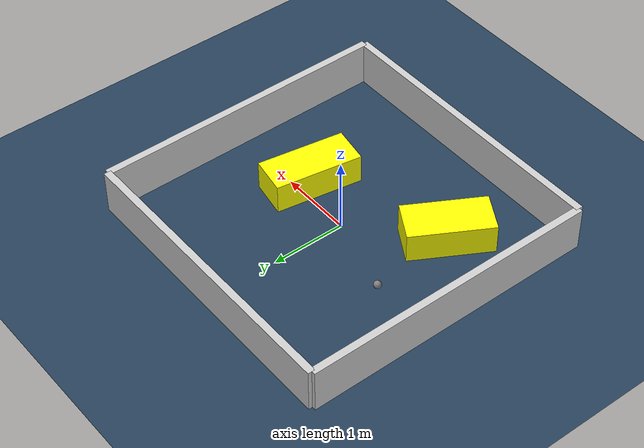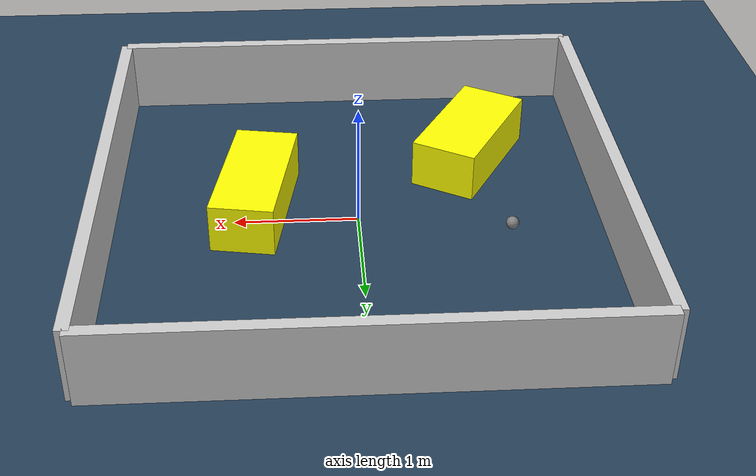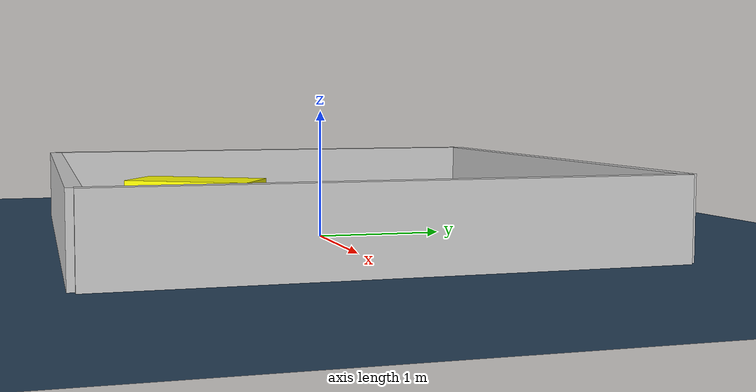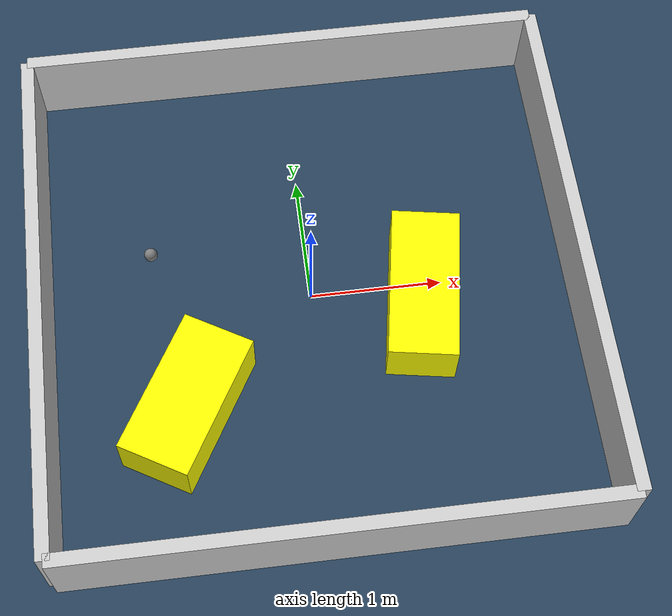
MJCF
<?xml version="1.0" ?>
<mujoco model="generated_environment">
  <option timestep="0.01" integrator="RK4" cone="elliptic"/>
  <default>
    <geom density="1"/>
  </default>
  <asset>
    <texture builtin="gradient" height="3072" rgb1="0.3 0.5 0.7" rgb2="0 0 0" type="skybox" width="512"/>
    <texture builtin="checker" height="300" mark="edge" markrgb="0.8 0.8 0.8" name="groundplane" rgb1="0.2 0.3 0.4" rgb2="0.1 0.2 0.3" type="2d" width="300"/>
    <material name="groundplane" reflectance="0.2" texrepeat="5 5" texture="groundplane" texuniform="true"/>
    <material name="robot" rgba="0.0 1.0 0.0 1"/>
  </asset>
  <worldbody>
    <light dir="0 0 -1" directional="true" pos="0 0 1.5"/>
    <geom condim="4" friction="1.0 0.005 0.001" material="groundplane" name="floor" size="0 0 0.05" type="plane"/>
    <body name="walls">
      <geom name="wall_1" condim="4" pos="-2.0 0.0 0.3" rgba="0.800000011920929 0.800000011920929 0.800000011920929 1.0" size="0.05 2.0 0.3" type="box"/>
      <geom name="wall_2" condim="4" pos="2.0 0.0 0.3" rgba="0.800000011920929 0.800000011920929 0.800000011920929 1.0" size="0.05 2.0 0.3" type="box"/>
      <geom name="wall_3" condim="4" pos="0.0 -2.0 0.3" rgba="0.800000011920929 0.800000011920929 0.800000011920929 1.0" size="2.0 0.05 0.3" type="box"/>
      <geom name="wall_4" condim="4" pos="0.0 2.0 0.3" rgba="0.800000011920929 0.800000011920929 0.800000011920929 1.0" size="2.0 0.05 0.3" type="box"/>
    </body>
    <body name="robot">
      <joint name="joint_x" type="slide" pos="0 0 0" axis="1 0 0"/>
      <joint name="joint_y" type="slide" pos="0 0 0" axis="0 1 0"/>
      <geom name="robot" type="sphere" pos="-1.1746467932144502 0.3969001676283108 0.2" size="0.05" mass="5." friction="1.0 0.005 0.0001" condim="4"/>
      <site name="sensor_ball"/>
    </body>
    <body name="obstacle_1_movable">
      <geom name="obstacle_1_movable" condim="4" pos="-0.9879251663330353 -0.8452122209016056 0.2" euler="0 0 149.93534870837598" friction="1.0 0.005 0.001" rgba="1 1 0 1" size="0.27281831118574795 0.551632489985773 0.2" type="box" mass="0.1"/>
      <joint type="free"/>
    </body>
    <body name="obstacle_2_movable">
      <geom name="obstacle_2_movable" condim="4" pos="0.8245506126447977 -0.1710066232722074 0.2" euler="0 0 80.32942124836474" friction="1.0 0.005 0.001" rgba="1 1 0 1" size="0.5856811963764048 0.25580035734191847 0.2" type="box" mass="0.1"/>
      <joint type="free"/>
    </body>
  </worldbody>
  <actuator>
    <motor name="actuator_x" joint="joint_x" gear="1" ctrlrange="-1 1"/>
    <motor name="actuator_y" joint="joint_y" gear="1" ctrlrange="-1 1"/>
  </actuator>
</mujoco>
